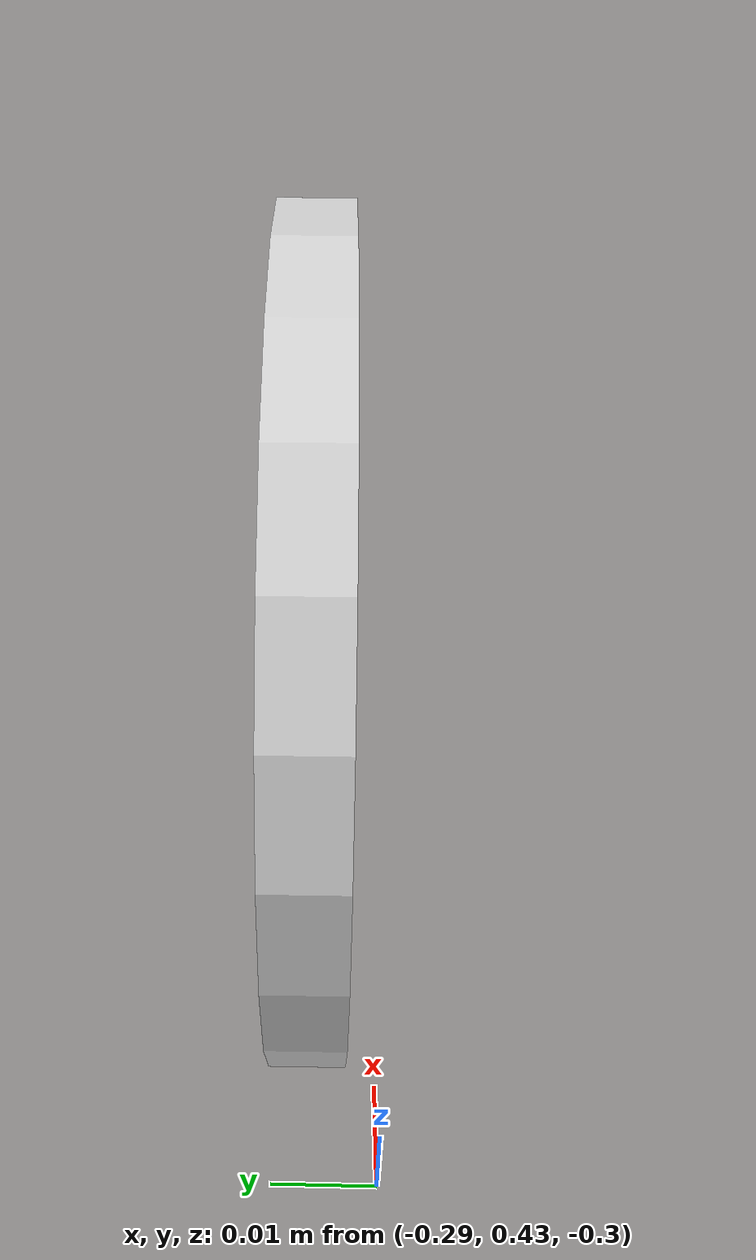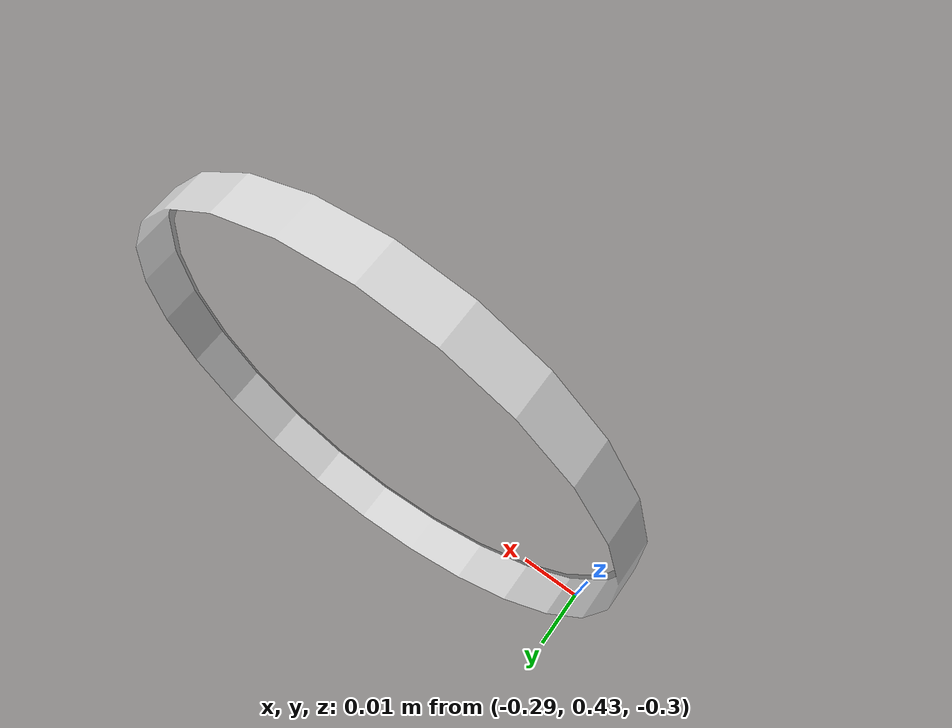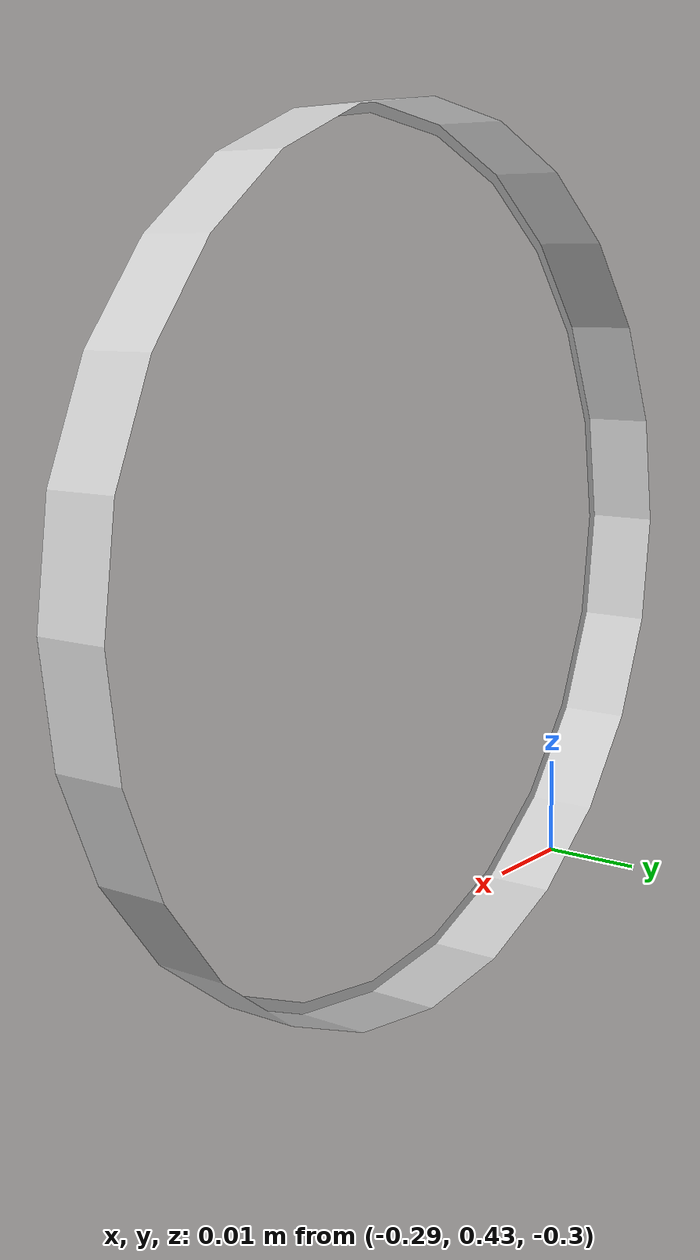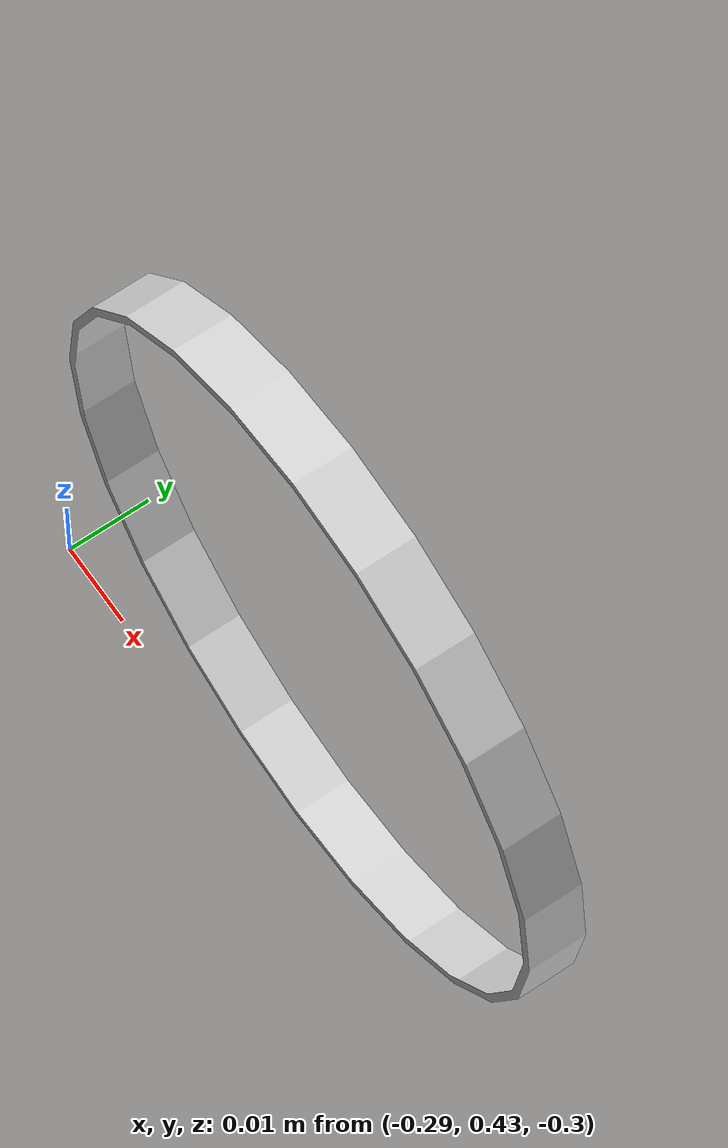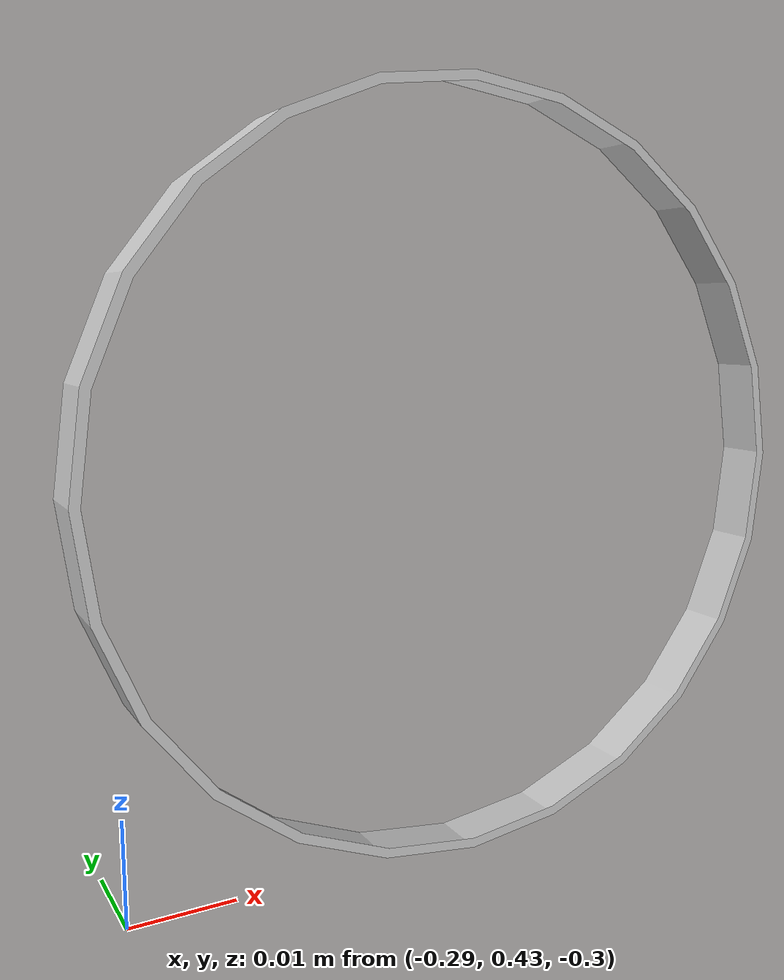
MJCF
<mujoco model="original-51">
  <default>
    <default class="visual">
      <geom group="2" type="mesh" contype="0" conaffinity="0"/>
    </default>
    <default class="collision">
      <geom group="3" type="mesh"/>
    </default>
  </default>
  <asset>
    <material name="material_0_0" specular="0.06666666666666667" shininess="0.03" rgba="0.8 0.8 0.8 1"/>
    <mesh file="original-51.obj"/>
  </asset>
  <worldbody>
    <body name="original-51">
      <geom material="material_0_0" mesh="original-51" class="visual"/>
      <geom mesh="original-51" class="collision"/>
    </body>
  </worldbody>
</mujoco>
